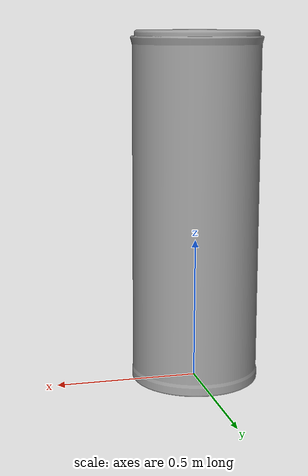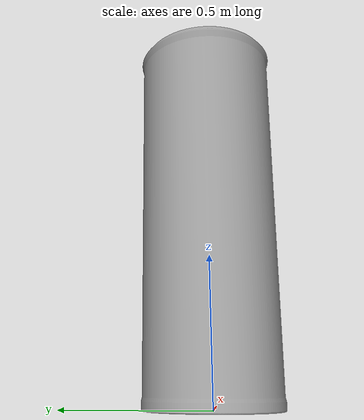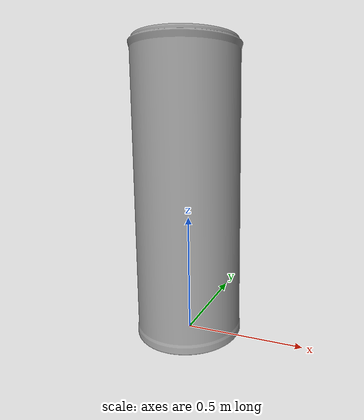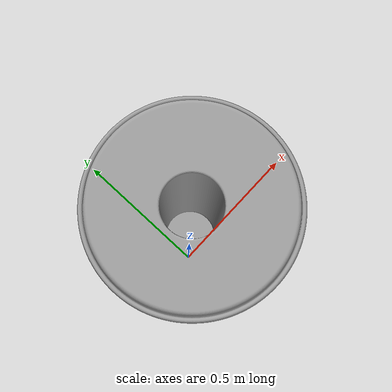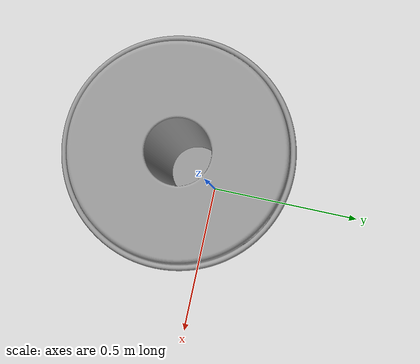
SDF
<?xml version='1.0'?>
<sdf version='1.7'>
  <model name='Cann'>
    <link name='link'>
      <inertial>
        <mass>5</mass>
        <inertia>
          <ixx>0.477167</ixx>
          <ixy>0</ixy>
          <ixz>0</ixz>
          <iyy>0.477167</iyy>
          <iyz>0</iyz>
          <izz>0.121</izz>
        </inertia>
        <pose>0 0 0 0 -0 0</pose>
      </inertial>
      <pose>0 0 0 0 -0 0</pose>
      <gravity>1</gravity>
      <self_collide>0</self_collide>
      <kinematic>0</kinematic>
      <enable_wind>0</enable_wind>
      <visual name='visual'>
        <geometry>
          <mesh>
            <uri>model://cannyone_simulation/models/Cann/meshes/Cann.stl</uri>
            <scale>1 1 1</scale>
          </mesh>
        </geometry>
        <material>
          <script>
            <name>Gazebo/Grey</name>
            <uri>file://media/materials/scripts/gazebo.material</uri>
          </script>
          <shader type='pixel'>
            <normal_map>__default__</normal_map>
          </shader>
          <ambient>1 1 1 1</ambient>
          <diffuse>1 1 1 1</diffuse>
          <specular>1 1 1 1</specular>
          <emissive>0 0 0 1</emissive>
        </material>
        <pose>0 0 0 0 -0 0</pose>
        <transparency>0</transparency>
        <cast_shadows>1</cast_shadows>
      </visual>
      <collision name='collision'>
        <laser_retro>0</laser_retro>
        <max_contacts>10</max_contacts>
        <pose>0 0 0 0 -0 0</pose>
        <geometry>
          <mesh>
            <uri>model://cannyone_simulation/models/Cann/meshes/Cann.stl</uri>
            <scale>1 1 1</scale>
          </mesh>
        </geometry>
        <surface>
          <friction>
            <ode>
              <mu>1</mu>
              <mu2>1</mu2>
              <fdir1>0 0 0</fdir1>
              <slip1>0</slip1>
              <slip2>0</slip2>
            </ode>
            <torsional>
              <coefficient>1</coefficient>
              <patch_radius>0</patch_radius>
              <surface_radius>0</surface_radius>
              <use_patch_radius>1</use_patch_radius>
              <ode>
                <slip>0</slip>
              </ode>
            </torsional>
          </friction>
          <bounce>
            <restitution_coefficient>0</restitution_coefficient>
            <threshold>1e+06</threshold>
          </bounce>
          <contact>
            <collide_without_contact>0</collide_without_contact>
            <collide_without_contact_bitmask>1</collide_without_contact_bitmask>
            <collide_bitmask>1</collide_bitmask>
            <ode>
              <soft_cfm>0</soft_cfm>
              <soft_erp>0.2</soft_erp>
              <kp>1e+13</kp>
              <kd>1</kd>
              <max_vel>0.01</max_vel>
              <min_depth>0</min_depth>
            </ode>
            <bullet>
              <split_impulse>1</split_impulse>
              <split_impulse_penetration_threshold>-0.01</split_impulse_penetration_threshold>
              <soft_cfm>0</soft_cfm>
              <soft_erp>0.2</soft_erp>
              <kp>1e+13</kp>
              <kd>1</kd>
            </bullet>
          </contact>
        </surface>
      </collision>
    </link>
    <static>1</static>
    <allow_auto_disable>1</allow_auto_disable>
  </model>
</sdf>
